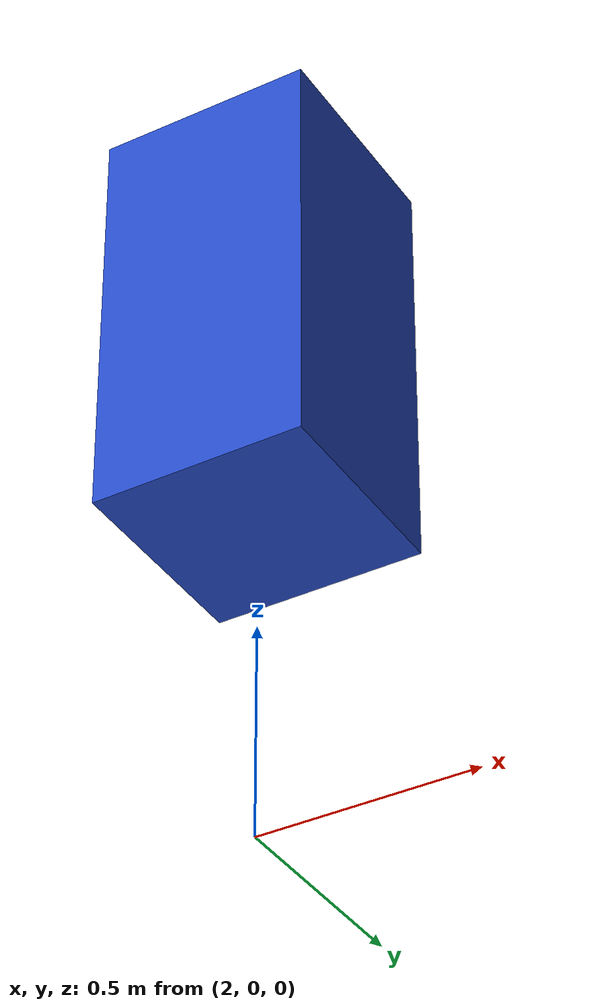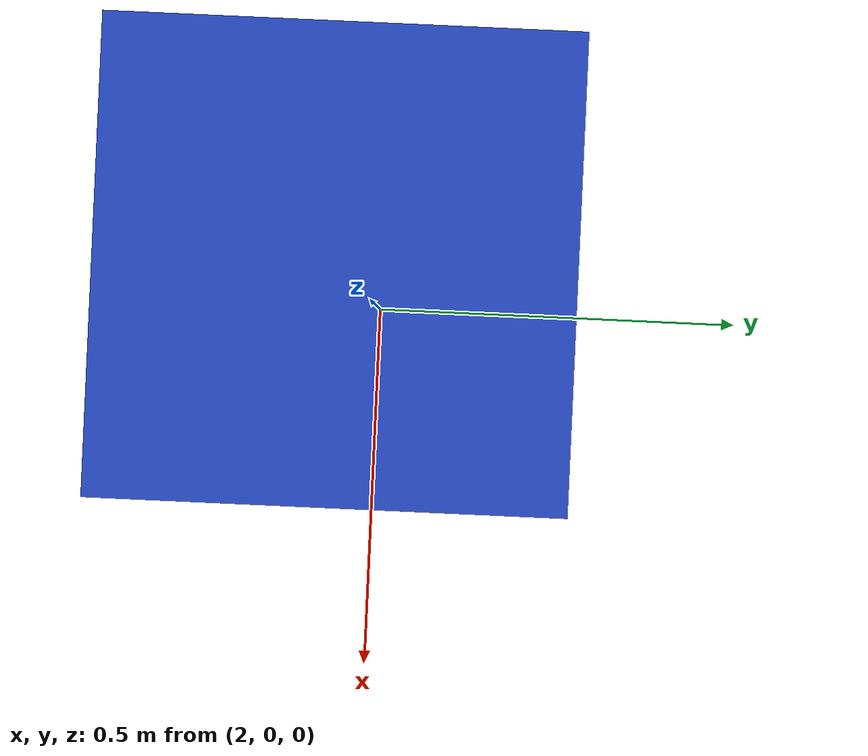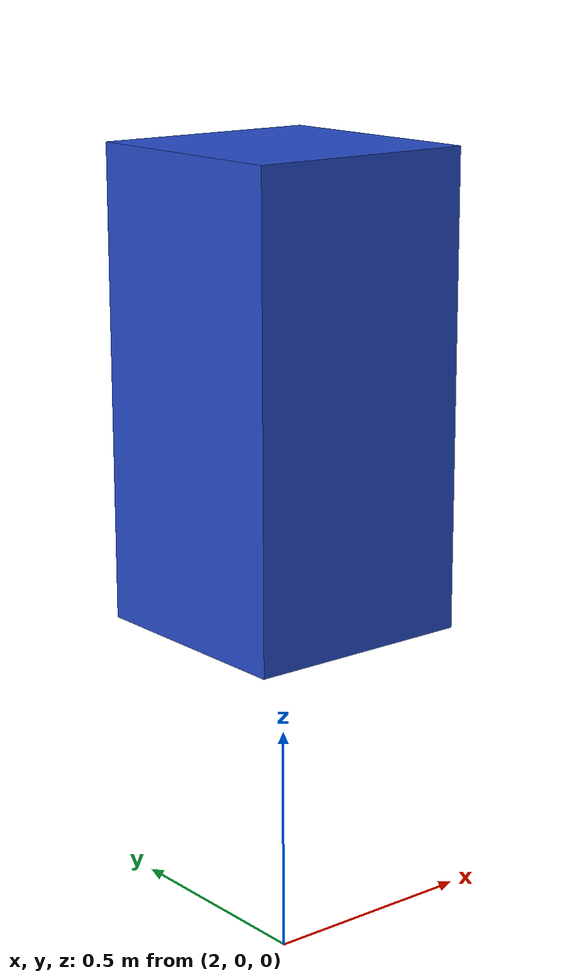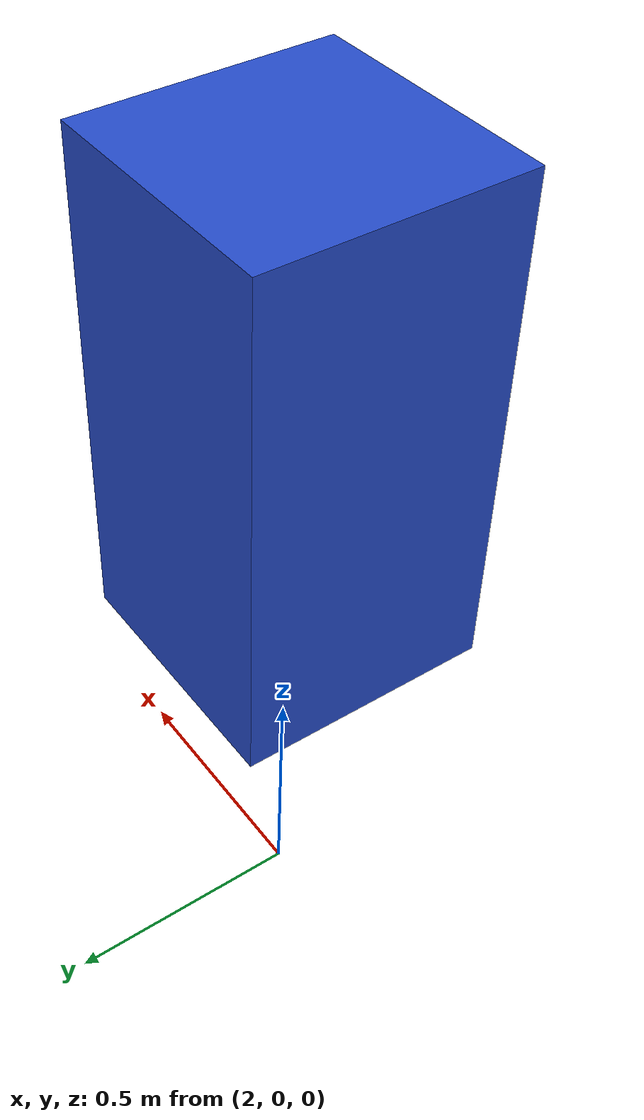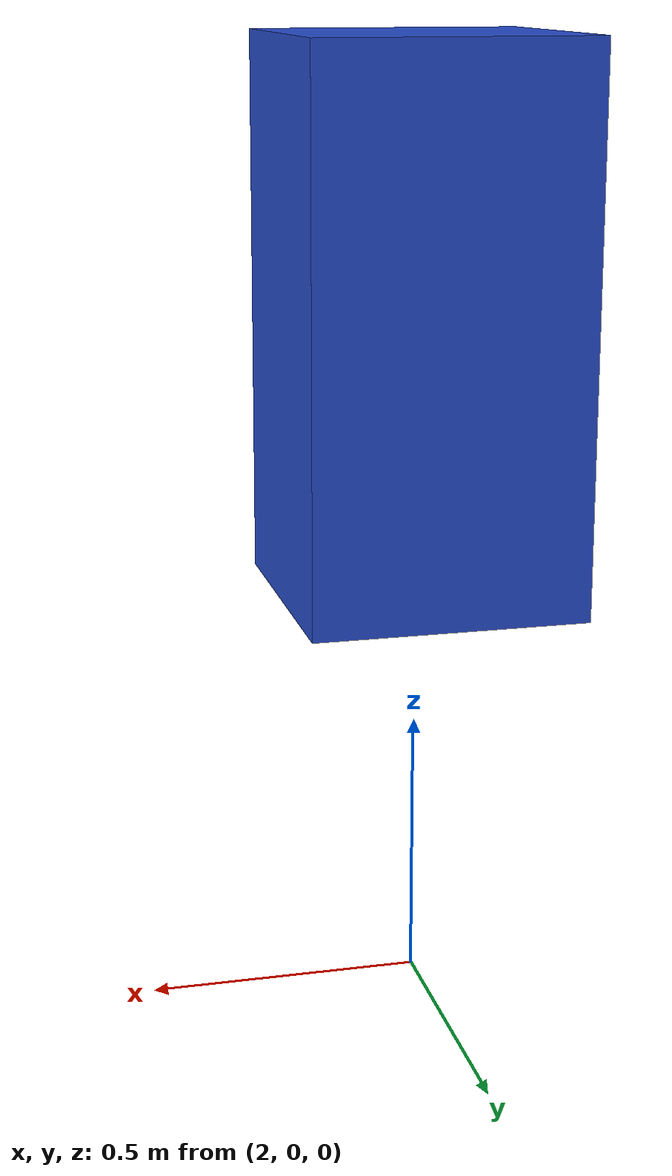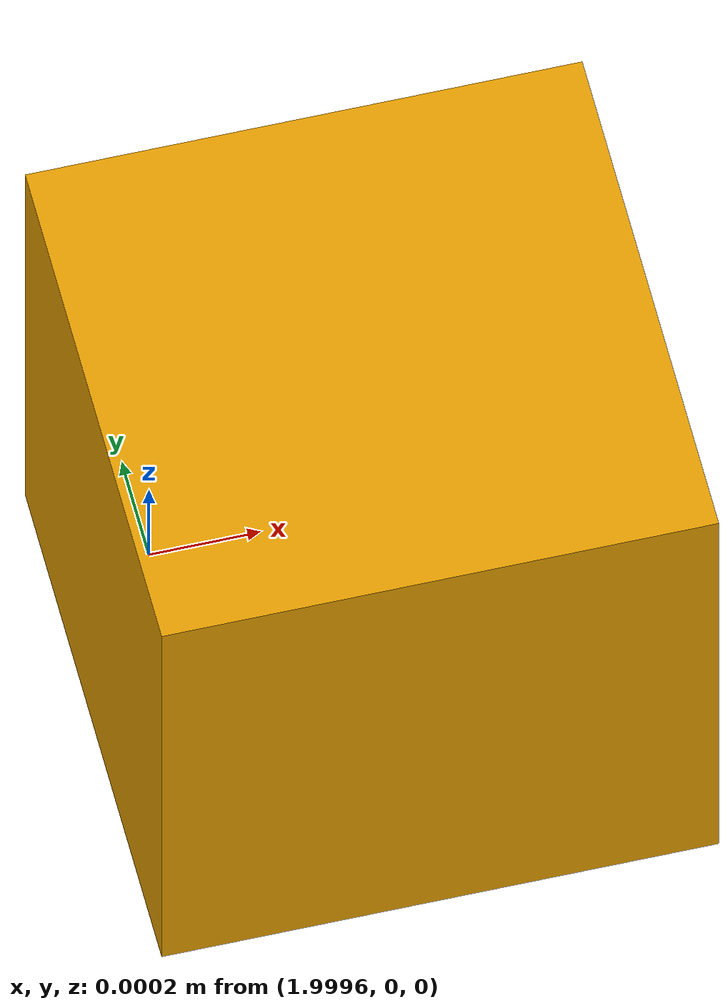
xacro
<robot name="test_model">

  <!-- root link, on the ground just below the model origin -->
  <link name="base_footprint">
   <visual>
      <origin xyz="2 0 0" rpy="0 0 0" />
      <geometry>
        <box size="0.001 0.001 0.001" />
      </geometry>
    </visual>
  </link>

  <joint name="base_link_joint" type="fixed">
    <origin xyz="2 0 1.25" rpy="0 0 0" />
    <parent link="base_footprint"/>
    <child link="base_link" />
  </joint>

  <!-- the model -->
  <link name="base_link">
    <inertial>
      <mass value="50" />
      <origin xyz="2 0 -1.25" />
      <inertia ixx="50.0" ixy="0.0" ixz="0.0"
        iyy="50.0" iyz="0.0"
        izz="50.0" />
    </inertial>
    <visual>
      <geometry>
        <box size="0.5 0.5 1.0" /> <!-- does not need to match collision -->
      </geometry>
    </visual>
    <collision>
      <origin xyz="2 0 -1" />
      <geometry>
        <cylinder length="0.5" radius="0.25" />
      </geometry>
    </collision>
  </link>
<gazebo reference="base_link">
<material>Gazebo/Blue</material>
  </gazebo>
  <gazebo>
    <plugin name="object_controller" filename="libgazebo_ros_planar_move.so">
      <commandTopic>cmd_vel</commandTopic>
      <odometryTopic>odom</odometryTopic>
      <odometryFrame>odom</odometryFrame>
      <odometryRate>20.0</odometryRate>
      <robotBaseFrame>base_footprint</robotBaseFrame>
    </plugin>
  </gazebo>

</robot>
